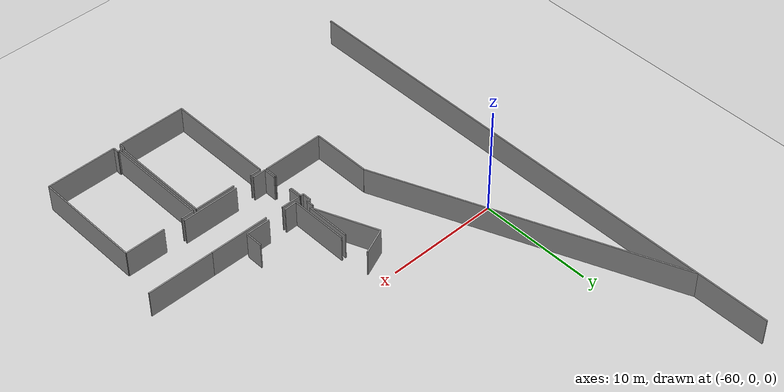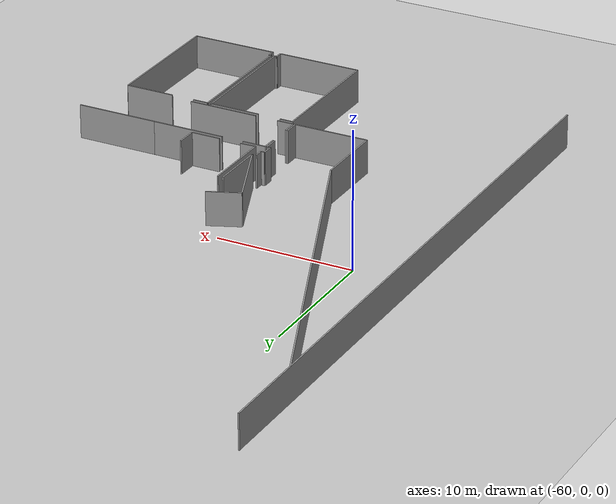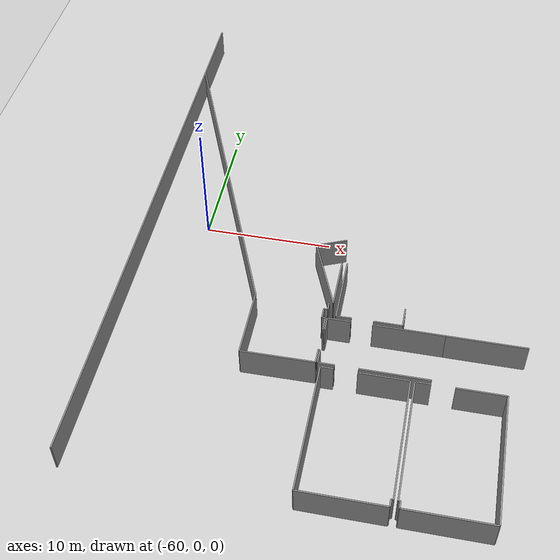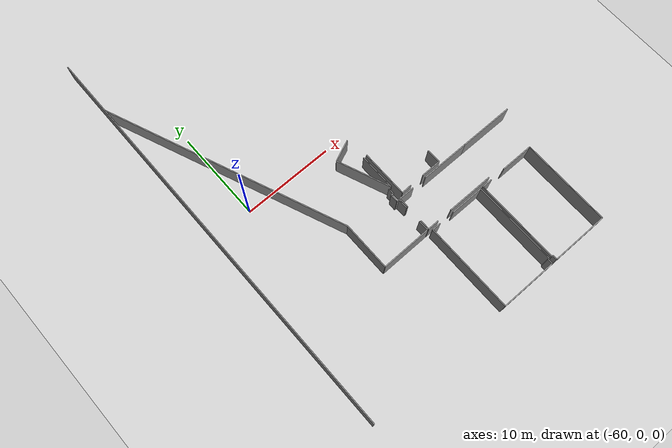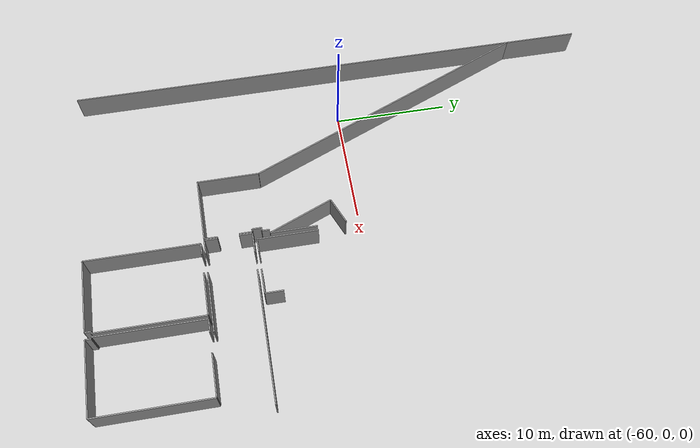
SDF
<sdf version="1.6">
 <world name="default">
  <model name="ground_plane">
   <static>1</static>
   <link name="link">
    <collision name="collision">
     <geometry><plane><normal>0 0 1</normal><size>100 100</size></plane></geometry>
     <surface><friction><ode><mu>100</mu><mu2>50</mu2></ode></friction></surface>
    </collision>
    <visual name="visual">
     <cast_shadows>0</cast_shadows>
     <geometry><plane><normal>0 0 1</normal><size>100 100</size></plane></geometry>
     <material>
      <script><uri>file://media/materials/scripts/gazebo.material</uri><name>Gazebo/Grey</name></script>
     </material>
    </visual>
   </link>
  </model>
  <model name="0510032192_A_40_1_203">
   <static>1</static>
   <link name="Wall_0">
    <collision name="Wall_0_Collision">
     <geometry><box><size>6.19875831655 0.1 2.5</size></box></geometry>
     <pose>3.09937915827 0 1.25 0 0 0</pose>
    </collision>
    <visual name="Wall_0_Visual">
     <pose>3.09937915827 0 1.25 0 0 0</pose>
     <geometry><box><size>6.19875831655 0.1 2.5</size></box></geometry>
     <material>
      <script><uri>file://media/materials/scripts/gazebo.material</uri><name>Gazebo/Grey</name></script>
      <ambient>1 1 1 1</ambient>
     </material>
    </visual>
    <pose>16.2161062993 -46.7425444979 0 0 0 0.0</pose>
   </link>
   <link name="Wall_1">
    <collision name="Wall_1_Collision">
     <geometry><box><size>0.544205583127 0.1 2.5</size></box></geometry>
     <pose>0.272102791564 0 1.25 0 0 0</pose>
    </collision>
    <visual name="Wall_1_Visual">
     <pose>0.272102791564 0 1.25 0 0 0</pose>
     <geometry><box><size>0.544205583127 0.1 2.5</size></box></geometry>
     <material>
      <script><uri>file://media/materials/scripts/gazebo.material</uri><name>Gazebo/Grey</name></script>
      <ambient>1 1 1 1</ambient>
     </material>
    </visual>
    <pose>22.4148646158 -46.7425444979 0 0 0 1.57079632679</pose>
   </link>
   <link name="Wall_2">
    <collision name="Wall_2_Collision">
     <geometry><box><size>0.157847579226 0.1 2.5</size></box></geometry>
     <pose>0.0789237896128 0 1.25 0 0 0</pose>
    </collision>
    <visual name="Wall_2_Visual">
     <pose>0.0789237896128 0 1.25 0 0 0</pose>
     <geometry><box><size>0.157847579226 0.1 2.5</size></box></geometry>
     <material>
      <script><uri>file://media/materials/scripts/gazebo.material</uri><name>Gazebo/Grey</name></script>
      <ambient>1 1 1 1</ambient>
     </material>
    </visual>
    <pose>22.4148646158 -46.1983389148 0 0 0 0.0</pose>
   </link>
   <link name="Wall_3">
    <collision name="Wall_3_Collision">
     <geometry><box><size>9.21705313058 0.1 2.5</size></box></geometry>
     <pose>4.60852656529 0 1.25 0 0 0</pose>
    </collision>
    <visual name="Wall_3_Visual">
     <pose>4.60852656529 0 1.25 0 0 0</pose>
     <geometry><box><size>9.21705313058 0.1 2.5</size></box></geometry>
     <material>
      <script><uri>file://media/materials/scripts/gazebo.material</uri><name>Gazebo/Grey</name></script>
      <ambient>1 1 1 1</ambient>
     </material>
    </visual>
    <pose>22.5727121951 -46.1983389148 0 0 0 1.57079632679</pose>
   </link>
   <link name="Wall_4">
    <collision name="Wall_4_Collision">
     <geometry><box><size>3.70064880185 0.1 2.5</size></box></geometry>
     <pose>1.85032440092 0 1.25 0 0 0</pose>
    </collision>
    <visual name="Wall_4_Visual">
     <pose>1.85032440092 0 1.25 0 0 0</pose>
     <geometry><box><size>3.70064880185 0.1 2.5</size></box></geometry>
     <material>
      <script><uri>file://media/materials/scripts/gazebo.material</uri><name>Gazebo/Grey</name></script>
      <ambient>1 1 1 1</ambient>
     </material>
    </visual>
    <pose>22.5727121951 -36.9812857842 0 0 0 3.14159265359</pose>
   </link>
   <link name="Wall_5">
    <collision name="Wall_5_Collision">
     <geometry><box><size>0.954838053722 0.1 2.5</size></box></geometry>
     <pose>0.477419026861 0 1.25 0 0 0</pose>
    </collision>
    <visual name="Wall_5_Visual">
     <pose>0.477419026861 0 1.25 0 0 0</pose>
     <geometry><box><size>0.954838053722 0.1 2.5</size></box></geometry>
     <material>
      <script><uri>file://media/materials/scripts/gazebo.material</uri><name>Gazebo/Grey</name></script>
      <ambient>1 1 1 1</ambient>
     </material>
    </visual>
    <pose>17.1753925537 -36.9812857842 0 0 0 3.14159265359</pose>
   </link>
   <link name="Wall_6">
    <collision name="Wall_6_Collision">
     <geometry><box><size>9.76125972723 0.1 2.5</size></box></geometry>
     <pose>4.88062986361 0 1.25 0 0 0</pose>
    </collision>
    <visual name="Wall_6_Visual">
     <pose>4.88062986361 0 1.25 0 0 0</pose>
     <geometry><box><size>9.76125972723 0.1 2.5</size></box></geometry>
     <material>
      <script><uri>file://media/materials/scripts/gazebo.material</uri><name>Gazebo/Grey</name></script>
      <ambient>1 1 1 1</ambient>
     </material>
    </visual>
    <pose>16.2205545 -36.9812857842 0 0 0 -1.57125202626</pose>
   </link>
   <link name="Wall_7">
    <collision name="Wall_7_Collision">
     <geometry><box><size>0.520693665127 0.1 2.5</size></box></geometry>
     <pose>0.260346832563 0 1.25 0 0 0</pose>
    </collision>
    <visual name="Wall_7_Visual">
     <pose>0.260346832563 0 1.25 0 0 0</pose>
     <geometry><box><size>0.520693665127 0.1 2.5</size></box></geometry>
     <material>
      <script><uri>file://media/materials/scripts/gazebo.material</uri><name>Gazebo/Grey</name></script>
      <ambient>1 1 1 1</ambient>
     </material>
    </visual>
    <pose>23.0235055634 -46.7333939136 0 0 0 1.57079632679</pose>
   </link>
   <link name="Wall_8">
    <collision name="Wall_8_Collision">
     <geometry><box><size>0.148188629128 0.1 2.5</size></box></geometry>
     <pose>0.074094314564 0 1.25 0 0 0</pose>
    </collision>
    <visual name="Wall_8_Visual">
     <pose>0.074094314564 0 1.25 0 0 0</pose>
     <geometry><box><size>0.148188629128 0.1 2.5</size></box></geometry>
     <material>
      <script><uri>file://media/materials/scripts/gazebo.material</uri><name>Gazebo/Grey</name></script>
      <ambient>1 1 1 1</ambient>
     </material>
    </visual>
    <pose>23.0235055634 -46.2127002485 0 0 0 3.14159265359</pose>
   </link>
   <link name="Wall_9">
    <collision name="Wall_9_Collision">
     <geometry><box><size>9.22734753792 0.1 2.5</size></box></geometry>
     <pose>4.61367376896 0 1.25 0 0 0</pose>
    </collision>
    <visual name="Wall_9_Visual">
     <pose>4.61367376896 0 1.25 0 0 0</pose>
     <geometry><box><size>9.22734753792 0.1 2.5</size></box></geometry>
     <material>
      <script><uri>file://media/materials/scripts/gazebo.material</uri><name>Gazebo/Grey</name></script>
      <ambient>1 1 1 1</ambient>
     </material>
    </visual>
    <pose>22.8753169343 -46.2127002485 0 0 0 1.57079632679</pose>
   </link>
   <link name="Wall_10">
    <collision name="Wall_10_Collision">
     <geometry><box><size>1.13403699632 0.1 2.5</size></box></geometry>
     <pose>0.56701849816 0 1.25 0 0 0</pose>
    </collision>
    <visual name="Wall_10_Visual">
     <pose>0.56701849816 0 1.25 0 0 0</pose>
     <geometry><box><size>1.13403699632 0.1 2.5</size></box></geometry>
     <material>
      <script><uri>file://media/materials/scripts/gazebo.material</uri><name>Gazebo/Grey</name></script>
      <ambient>1 1 1 1</ambient>
     </material>
    </visual>
    <pose>22.8753169343 -36.9853527105 0 0 0 0.0</pose>
   </link>
   <link name="Wall_11">
    <collision name="Wall_11_Collision">
     <geometry><box><size>3.58842705269 0.1 2.5</size></box></geometry>
     <pose>1.79421352634 0 1.25 0 0 0</pose>
    </collision>
    <visual name="Wall_11_Visual">
     <pose>1.79421352634 0 1.25 0 0 0</pose>
     <geometry><box><size>3.58842705269 0.1 2.5</size></box></geometry>
     <material>
      <script><uri>file://media/materials/scripts/gazebo.material</uri><name>Gazebo/Grey</name></script>
      <ambient>1 1 1 1</ambient>
     </material>
    </visual>
    <pose>25.6855630469 -36.9853527105 0 0 0 0.0</pose>
   </link>
   <link name="Wall_12">
    <collision name="Wall_12_Collision">
     <geometry><box><size>9.74105117337 0.1 2.5</size></box></geometry>
     <pose>4.87052558669 0 1.25 0 0 0</pose>
    </collision>
    <visual name="Wall_12_Visual">
     <pose>4.87052558669 0 1.25 0 0 0</pose>
     <geometry><box><size>9.74105117337 0.1 2.5</size></box></geometry>
     <material>
      <script><uri>file://media/materials/scripts/gazebo.material</uri><name>Gazebo/Grey</name></script>
      <ambient>1 1 1 1</ambient>
     </material>
    </visual>
    <pose>29.2739900996 -36.9853527105 0 0 0 -1.57079632679</pose>
   </link>
   <link name="Wall_13">
    <collision name="Wall_13_Collision">
     <geometry><box><size>6.25048844468 0.1 2.5</size></box></geometry>
     <pose>3.12524422234 0 1.25 0 0 0</pose>
    </collision>
    <visual name="Wall_13_Visual">
     <pose>3.12524422234 0 1.25 0 0 0</pose>
     <geometry><box><size>6.25048844468 0.1 2.5</size></box></geometry>
     <material>
      <script><uri>file://media/materials/scripts/gazebo.material</uri><name>Gazebo/Grey</name></script>
      <ambient>1 1 1 1</ambient>
     </material>
    </visual>
    <pose>29.2739900996 -46.7264038839 0 0 0 -3.14047433601</pose>
   </link>
   <link name="Wall_162">
    <collision name="Wall_162_Collision">
     <geometry><box><size>5.30797435295 0.1 2.5</size></box></geometry>
     <pose>2.65398717647 0 1.25 0 0 0</pose>
    </collision>
    <visual name="Wall_162_Visual">
     <pose>2.65398717647 0 1.25 0 0 0</pose>
     <geometry><box><size>5.30797435295 0.1 2.5</size></box></geometry>
     <material>
      <script><uri>file://media/materials/scripts/gazebo.material</uri><name>Gazebo/Grey</name></script>
      <ambient>1 1 1 1</ambient>
     </material>
    </visual>
    <pose>10.3407957196 -36.7161730223 0 0 0 1.57079632679</pose>
   </link>
   <link name="Wall_163">
    <collision name="Wall_163_Collision">
     <geometry><box><size>27.0834003432 0.1 2.5</size></box></geometry>
     <pose>13.5417001716 0 1.25 0 0 0</pose>
    </collision>
    <visual name="Wall_163_Visual">
     <pose>13.5417001716 0 1.25 0 0 0</pose>
     <geometry><box><size>27.0834003432 0.1 2.5</size></box></geometry>
     <material>
      <script><uri>file://media/materials/scripts/gazebo.material</uri><name>Gazebo/Grey</name></script>
      <ambient>1 1 1 1</ambient>
     </material>
    </visual>
    <pose>10.3407957196 -31.4081986694 0 0 0 1.96255349822</pose>
   </link>
   <link name="Wall_167">
    <collision name="Wall_167_Collision">
     <geometry><box><size>0.651852040135 0.1 2.5</size></box></geometry>
     <pose>0.325926020068 0 1.25 0 0 0</pose>
    </collision>
    <visual name="Wall_167_Visual">
     <pose>0.325926020068 0 1.25 0 0 0</pose>
     <geometry><box><size>0.651852040135 0.1 2.5</size></box></geometry>
     <material>
      <script><uri>file://media/materials/scripts/gazebo.material</uri><name>Gazebo/Grey</name></script>
      <ambient>1 1 1 1</ambient>
     </material>
    </visual>
    <pose>15.8626649806 -31.1665978255 0 0 0 -1.57079632679</pose>
   </link>
   <link name="Wall_168">
    <collision name="Wall_168_Collision">
     <geometry><box><size>0.284049387737 0.1 2.5</size></box></geometry>
     <pose>0.142024693868 0 1.25 0 0 0</pose>
    </collision>
    <visual name="Wall_168_Visual">
     <pose>0.142024693868 0 1.25 0 0 0</pose>
     <geometry><box><size>0.284049387737 0.1 2.5</size></box></geometry>
     <material>
      <script><uri>file://media/materials/scripts/gazebo.material</uri><name>Gazebo/Grey</name></script>
      <ambient>1 1 1 1</ambient>
     </material>
    </visual>
    <pose>15.8626649806 -31.8184498656 0 0 0 3.14159265359</pose>
   </link>
   <link name="Wall_169">
    <collision name="Wall_169_Collision">
     <geometry><box><size>0.802455406788 0.1 2.5</size></box></geometry>
     <pose>0.401227703394 0 1.25 0 0 0</pose>
    </collision>
    <visual name="Wall_169_Visual">
     <pose>0.401227703394 0 1.25 0 0 0</pose>
     <geometry><box><size>0.802455406788 0.1 2.5</size></box></geometry>
     <material>
      <script><uri>file://media/materials/scripts/gazebo.material</uri><name>Gazebo/Grey</name></script>
      <ambient>1 1 1 1</ambient>
     </material>
    </visual>
    <pose>15.5786155928 -31.8184498656 0 0 0 -1.57079632679</pose>
   </link>
   <link name="Wall_170">
    <collision name="Wall_170_Collision">
     <geometry><box><size>0.257106000623 0.1 2.5</size></box></geometry>
     <pose>0.128553000311 0 1.25 0 0 0</pose>
    </collision>
    <visual name="Wall_170_Visual">
     <pose>0.128553000311 0 1.25 0 0 0</pose>
     <geometry><box><size>0.257106000623 0.1 2.5</size></box></geometry>
     <material>
      <script><uri>file://media/materials/scripts/gazebo.material</uri><name>Gazebo/Grey</name></script>
      <ambient>1 1 1 1</ambient>
     </material>
    </visual>
    <pose>15.5786155928 -32.6209052724 0 0 0 0.0</pose>
   </link>
   <link name="Wall_171">
    <collision name="Wall_171_Collision">
     <geometry><box><size>1.10442468878 0.1 2.5</size></box></geometry>
     <pose>0.552212344392 0 1.25 0 0 0</pose>
    </collision>
    <visual name="Wall_171_Visual">
     <pose>0.552212344392 0 1.25 0 0 0</pose>
     <geometry><box><size>1.10442468878 0.1 2.5</size></box></geometry>
     <material>
      <script><uri>file://media/materials/scripts/gazebo.material</uri><name>Gazebo/Grey</name></script>
      <ambient>1 1 1 1</ambient>
     </material>
    </visual>
    <pose>15.8357215935 -32.6209052724 0 0 0 -1.57079632679</pose>
   </link>
   <link name="Wall_172">
    <collision name="Wall_172_Collision">
     <geometry><box><size>1.13657882529 0.1 2.5</size></box></geometry>
     <pose>0.568289412647 0 1.25 0 0 0</pose>
    </collision>
    <visual name="Wall_172_Visual">
     <pose>0.568289412647 0 1.25 0 0 0</pose>
     <geometry><box><size>1.13657882529 0.1 2.5</size></box></geometry>
     <material>
      <script><uri>file://media/materials/scripts/gazebo.material</uri><name>Gazebo/Grey</name></script>
      <ambient>1 1 1 1</ambient>
     </material>
    </visual>
    <pose>15.8357215935 -35.5286305261 0 0 0 -1.57079632679</pose>
   </link>
   <link name="Wall_173">
    <collision name="Wall_173_Collision">
     <geometry><box><size>5.49516220466 0.1 2.5</size></box></geometry>
     <pose>2.74758110233 0 1.25 0 0 0</pose>
    </collision>
    <visual name="Wall_173_Visual">
     <pose>2.74758110233 0 1.25 0 0 0</pose>
     <geometry><box><size>5.49516220466 0.1 2.5</size></box></geometry>
     <material>
      <script><uri>file://media/materials/scripts/gazebo.material</uri><name>Gazebo/Grey</name></script>
      <ambient>1 1 1 1</ambient>
     </material>
    </visual>
    <pose>15.8357215935 -36.6652093514 0 0 0 -3.132318241</pose>
   </link>
   <link name="Wall_199">
    <collision name="Wall_199_Collision">
     <geometry><box><size>5.92068086421 0.1 2.5</size></box></geometry>
     <pose>2.9603404321 0 1.25 0 0 0</pose>
    </collision>
    <visual name="Wall_199_Visual">
     <pose>2.9603404321 0 1.25 0 0 0</pose>
     <geometry><box><size>5.92068086421 0.1 2.5</size></box></geometry>
     <material>
      <script><uri>file://media/materials/scripts/gazebo.material</uri><name>Gazebo/Grey</name></script>
      <ambient>1 1 1 1</ambient>
     </material>
    </visual>
    <pose>16.1615840678 -31.1495675713 0 0 0 1.9583501463</pose>
   </link>
   <link name="Wall_200">
    <collision name="Wall_200_Collision">
     <geometry><box><size>2.43048871976 0.1 2.5</size></box></geometry>
     <pose>1.21524435988 0 1.25 0 0 0</pose>
    </collision>
    <visual name="Wall_200_Visual">
     <pose>1.21524435988 0 1.25 0 0 0</pose>
     <geometry><box><size>2.43048871976 0.1 2.5</size></box></geometry>
     <material>
      <script><uri>file://media/materials/scripts/gazebo.material</uri><name>Gazebo/Grey</name></script>
      <ambient>1 1 1 1</ambient>
     </material>
    </visual>
    <pose>13.9240120229 -25.6679862995 0 0 0 0.398966326424</pose>
   </link>
   <link name="Wall_202">
    <collision name="Wall_202_Collision">
     <geometry><box><size>4.00237713995 0.1 2.5</size></box></geometry>
     <pose>2.00118856998 0 1.25 0 0 0</pose>
    </collision>
    <visual name="Wall_202_Visual">
     <pose>2.00118856998 0 1.25 0 0 0</pose>
     <geometry><box><size>4.00237713995 0.1 2.5</size></box></geometry>
     <material>
      <script><uri>file://media/materials/scripts/gazebo.material</uri><name>Gazebo/Grey</name></script>
      <ambient>1 1 1 1</ambient>
     </material>
    </visual>
    <pose>16.1718784752 -27.1472036704 0 0 0 -1.57336840292</pose>
   </link>
   <link name="Wall_203">
    <collision name="Wall_203_Collision">
     <geometry><box><size>5.21951870468 0.1 2.5</size></box></geometry>
     <pose>2.60975935234 0 1.25 0 0 0</pose>
    </collision>
    <visual name="Wall_203_Visual">
     <pose>2.60975935234 0 1.25 0 0 0</pose>
     <geometry><box><size>5.21951870468 0.1 2.5</size></box></geometry>
     <material>
      <script><uri>file://media/materials/scripts/gazebo.material</uri><name>Gazebo/Grey</name></script>
      <ambient>1 1 1 1</ambient>
     </material>
    </visual>
    <pose>16.5647181429 -32.3364746103 0 0 0 1.57079632679</pose>
   </link>
   <link name="Wall_213">
    <collision name="Wall_213_Collision">
     <geometry><box><size>1.55750570323 0.1 2.5</size></box></geometry>
     <pose>0.778752851614 0 1.25 0 0 0</pose>
    </collision>
    <visual name="Wall_213_Visual">
     <pose>0.778752851614 0 1.25 0 0 0</pose>
     <geometry><box><size>1.55750570323 0.1 2.5</size></box></geometry>
     <material>
      <script><uri>file://media/materials/scripts/gazebo.material</uri><name>Gazebo/Grey</name></script>
      <ambient>1 1 1 1</ambient>
     </material>
    </visual>
    <pose>21.4611703852 -30.7404601981 0 0 0 -1.57079632679</pose>
   </link>
   <link name="Wall_214">
    <collision name="Wall_214_Collision">
     <geometry><box><size>2.14568492759 0.1 2.5</size></box></geometry>
     <pose>1.07284246379 0 1.25 0 0 0</pose>
    </collision>
    <visual name="Wall_214_Visual">
     <pose>1.07284246379 0 1.25 0 0 0</pose>
     <geometry><box><size>2.14568492759 0.1 2.5</size></box></geometry>
     <material>
      <script><uri>file://media/materials/scripts/gazebo.material</uri><name>Gazebo/Grey</name></script>
      <ambient>1 1 1 1</ambient>
     </material>
    </visual>
    <pose>21.4611703852 -32.2979659014 0 0 0 3.14159265359</pose>
   </link>
   <link name="Wall_215">
    <collision name="Wall_215_Collision">
     <geometry><box><size>1.13977137429 0.1 2.5</size></box></geometry>
     <pose>0.569885687143 0 1.25 0 0 0</pose>
    </collision>
    <visual name="Wall_215_Visual">
     <pose>0.569885687143 0 1.25 0 0 0</pose>
     <geometry><box><size>1.13977137429 0.1 2.5</size></box></geometry>
     <material>
      <script><uri>file://media/materials/scripts/gazebo.material</uri><name>Gazebo/Grey</name></script>
      <ambient>1 1 1 1</ambient>
     </material>
    </visual>
    <pose>17.7038387972 -32.2979659014 0 0 0 -3.10779987728</pose>
   </link>
   <link name="Wall_216">
    <collision name="Wall_216_Collision">
     <geometry><box><size>1.1128127244 0.1 2.5</size></box></geometry>
     <pose>0.556406362198 0 1.25 0 0 0</pose>
    </collision>
    <visual name="Wall_216_Visual">
     <pose>0.556406362198 0 1.25 0 0 0</pose>
     <geometry><box><size>1.1128127244 0.1 2.5</size></box></geometry>
     <material>
      <script><uri>file://media/materials/scripts/gazebo.material</uri><name>Gazebo/Grey</name></script>
      <ambient>1 1 1 1</ambient>
     </material>
    </visual>
    <pose>15.9629401336 -36.6734702956 0 0 0 1.57079632679</pose>
   </link>
   <link name="Wall_217">
    <collision name="Wall_217_Collision">
     <geometry><box><size>1.11459200468 0.1 2.5</size></box></geometry>
     <pose>0.557296002338 0 1.25 0 0 0</pose>
    </collision>
    <visual name="Wall_217_Visual">
     <pose>0.557296002338 0 1.25 0 0 0</pose>
     <geometry><box><size>1.11459200468 0.1 2.5</size></box></geometry>
     <material>
      <script><uri>file://media/materials/scripts/gazebo.material</uri><name>Gazebo/Grey</name></script>
      <ambient>1 1 1 1</ambient>
     </material>
    </visual>
    <pose>15.9629401336 -33.7440124041 0 0 0 1.57079632679</pose>
   </link>
   <link name="Wall_218">
    <collision name="Wall_218_Collision">
     <geometry><box><size>1.7298417076 0.1 2.5</size></box></geometry>
     <pose>0.8649208538 0 1.25 0 0 0</pose>
    </collision>
    <visual name="Wall_218_Visual">
     <pose>0.8649208538 0 1.25 0 0 0</pose>
     <geometry><box><size>1.7298417076 0.1 2.5</size></box></geometry>
     <material>
      <script><uri>file://media/materials/scripts/gazebo.material</uri><name>Gazebo/Grey</name></script>
      <ambient>1 1 1 1</ambient>
     </material>
    </visual>
    <pose>15.9629401336 -32.6294203994 0 0 0 0.0</pose>
   </link>
   <link name="Wall_219">
    <collision name="Wall_219_Collision">
     <geometry><box><size>5.3078472615 0.1 2.5</size></box></geometry>
     <pose>2.65392363075 0 1.25 0 0 0</pose>
    </collision>
    <visual name="Wall_219_Visual">
     <pose>2.65392363075 0 1.25 0 0 0</pose>
     <geometry><box><size>5.3078472615 0.1 2.5</size></box></geometry>
     <material>
      <script><uri>file://media/materials/scripts/gazebo.material</uri><name>Gazebo/Grey</name></script>
      <ambient>1 1 1 1</ambient>
     </material>
    </visual>
    <pose>19.295786283 -32.6294203994 0 0 0 0.0</pose>
   </link>
   <link name="Wall_220">
    <collision name="Wall_220_Collision">
     <geometry><box><size>5.93199336583 0.1 2.5</size></box></geometry>
     <pose>2.96599668291 0 1.25 0 0 0</pose>
    </collision>
    <visual name="Wall_220_Visual">
     <pose>2.96599668291 0 1.25 0 0 0</pose>
     <geometry><box><size>5.93199336583 0.1 2.5</size></box></geometry>
     <material>
      <script><uri>file://media/materials/scripts/gazebo.material</uri><name>Gazebo/Grey</name></script>
      <ambient>1 1 1 1</ambient>
     </material>
    </visual>
    <pose>24.6036335445 -32.6294203994 0 0 0 0.0</pose>
   </link>
   <link name="Wall_249">
    <collision name="Wall_249_Collision">
     <geometry><box><size>5.11886227735 0.1 2.5</size></box></geometry>
     <pose>2.55943113868 0 1.25 0 0 0</pose>
    </collision>
    <visual name="Wall_249_Visual">
     <pose>2.55943113868 0 1.25 0 0 0</pose>
     <geometry><box><size>5.11886227735 0.1 2.5</size></box></geometry>
     <material>
      <script><uri>file://media/materials/scripts/gazebo.material</uri><name>Gazebo/Grey</name></script>
      <ambient>1 1 1 1</ambient>
     </material>
    </visual>
    <pose>24.0056682786 -36.6643197112 0 0 0 3.14159265359</pose>
   </link>
   <link name="Wall_250">
    <collision name="Wall_250_Collision">
     <geometry><box><size>1.22684787965 0.1 2.5</size></box></geometry>
     <pose>0.613423939824 0 1.25 0 0 0</pose>
    </collision>
    <visual name="Wall_250_Visual">
     <pose>0.613423939824 0 1.25 0 0 0</pose>
     <geometry><box><size>1.22684787965 0.1 2.5</size></box></geometry>
     <material>
      <script><uri>file://media/materials/scripts/gazebo.material</uri><name>Gazebo/Grey</name></script>
      <ambient>1 1 1 1</ambient>
     </material>
    </visual>
    <pose>17.1897538874 -36.6643197112 0 0 0 -3.13413397081</pose>
   </link>
   <link name="Wall_527">
    <collision name="Wall_527_Collision">
     <geometry><box><size>46.7436883209 0.1 2.5</size></box></geometry>
     <pose>23.3718441605 0 1.25 0 0 0</pose>
    </collision>
    <visual name="Wall_527_Visual">
     <pose>23.3718441605 0 1.25 0 0 0</pose>
     <geometry><box><size>46.7436883209 0.1 2.5</size></box></geometry>
     <material>
      <script><uri>file://media/materials/scripts/gazebo.material</uri><name>Gazebo/Grey</name></script>
      <ambient>1 1 1 1</ambient>
     </material>
    </visual>
    <pose>0.0 -46.7436883209 0 0 0 1.57079632679</pose>
   </link>
   <pose>-64.55 23.3936883209 0 0 0 0</pose>
  </model>
 </world>
</sdf>
